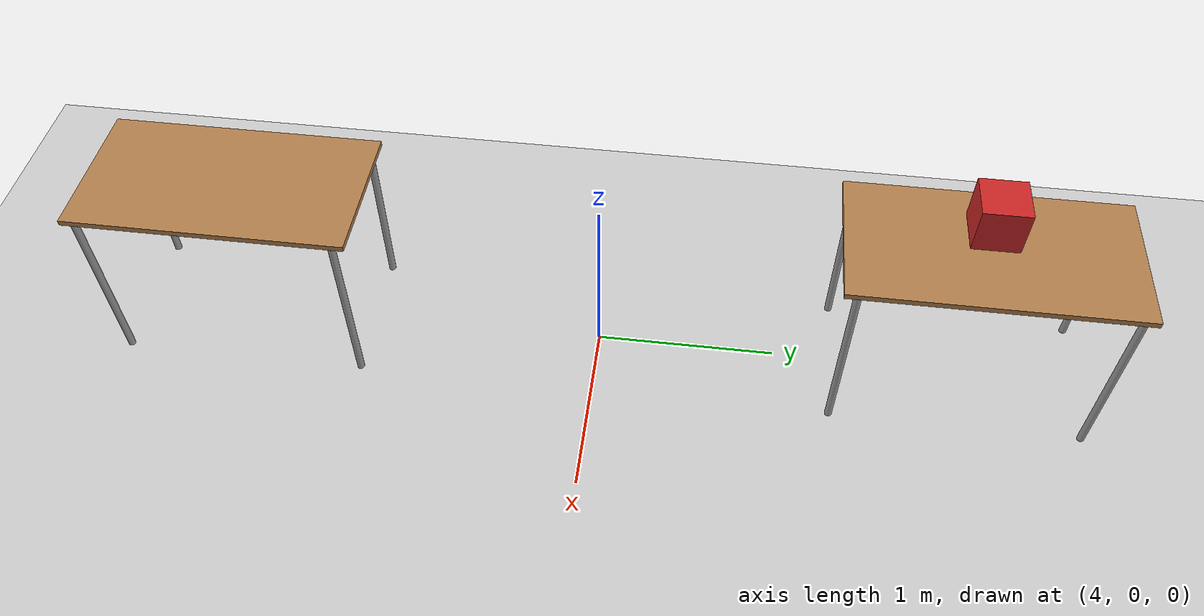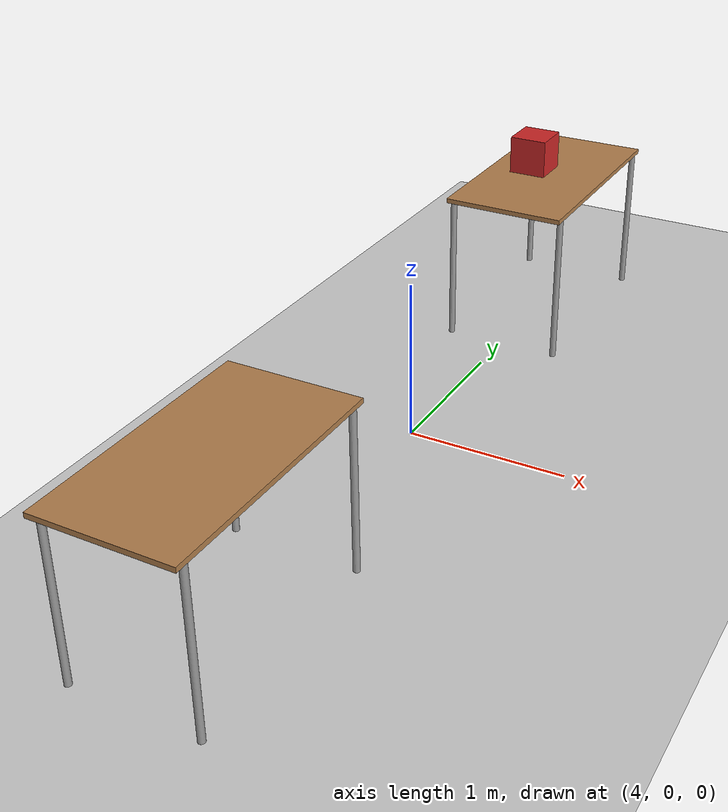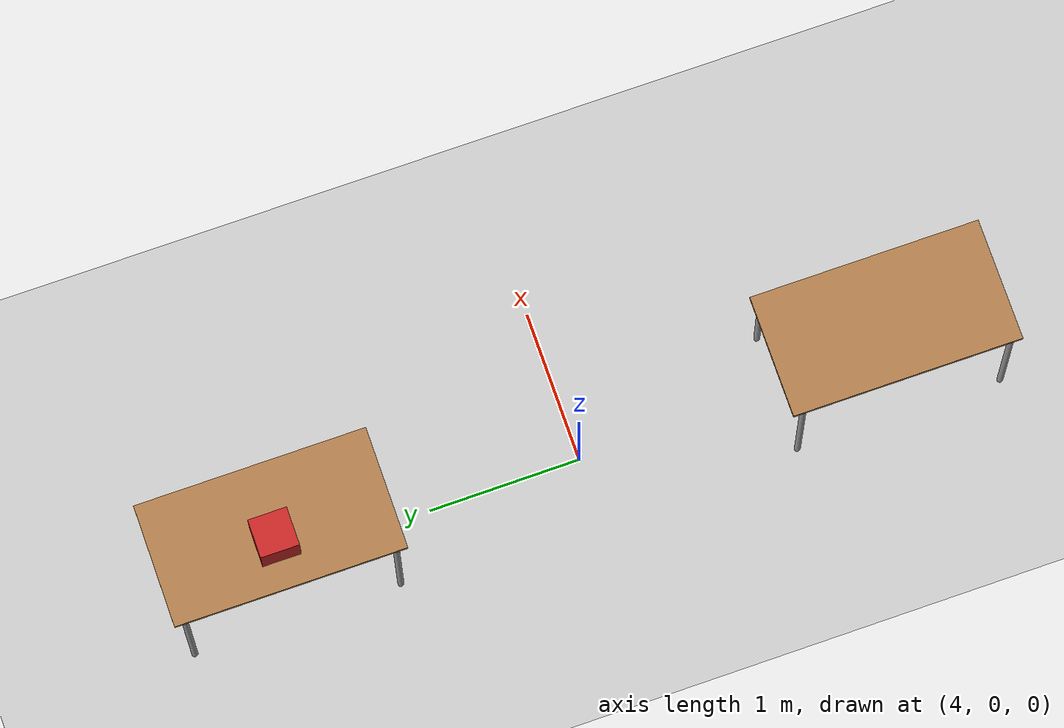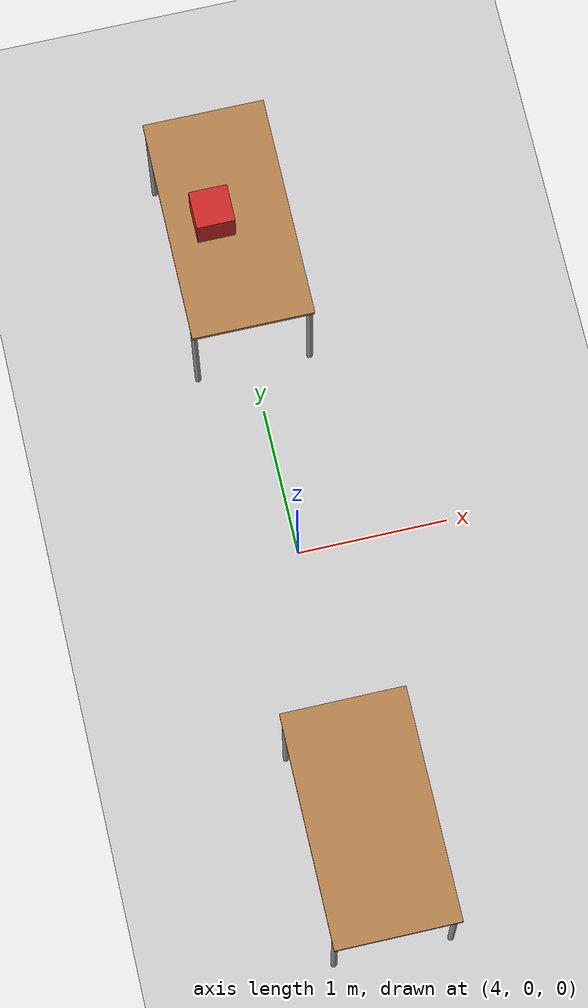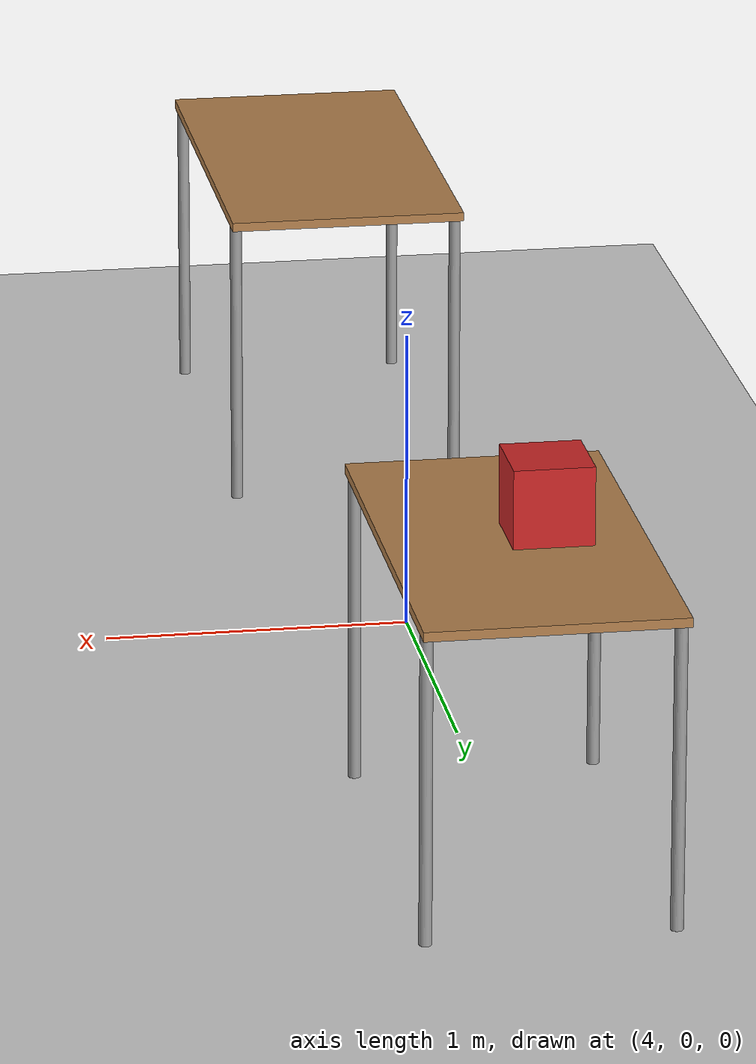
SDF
<?xml version="1.0" ?>
<sdf version="1.4">
  <!-- We use a custom world for the iiwa so that the camera angle is launched correctly. -->
  <!-- One can change this world to his needs or use another one. -->

  <world name="harmony_world">

    <include>
      <uri>model://ground_plane</uri>
    </include>

    <!-- Global light source -->
    <include>
      <uri>model://sun</uri>
    </include>

    <!-- Focus camera -->
    <gui fullscreen='0'>
      <camera name='user_camera'>
        <pose>8.0 -5.0 2.75 0.000000 0.275643 2.356190</pose>
        <view_controller>orbit</view_controller>
        <projection_type>perspective</projection_type>
      </camera>
    </gui>

    <model name='table'>
      <static>1</static>
      <link name='link'>
        <collision name='surface'>
          <pose>0 0 1 0 -0 0</pose>
          <geometry>
            <box>
              <size>1.5 0.8 0.03</size>
            </box>
          </geometry>
          <surface>
            <friction>
              <ode>
                <mu>0.6</mu>
                <mu2>0.6</mu2>
              </ode>
              <torsional>
                <ode/>
              </torsional>
            </friction>
            <contact>
              <ode/>
            </contact>
            <bounce/>
          </surface>
          <max_contacts>10</max_contacts>
        </collision>
        <visual name='visual1'>
          <pose>0 0 1 0 -0 0</pose>
          <geometry>
            <box>
              <size>1.5 0.8 0.03</size>
            </box>
          </geometry>
          <material>
            <script>
              <uri>file://media/materials/scripts/gazebo.material</uri>
              <name>Gazebo/Wood</name>
            </script>
          </material>
        </visual>
        <collision name='front_left_leg'>
          <pose>0.68 0.38 0.5 0 -0 0</pose>
          <geometry>
            <cylinder>
              <radius>0.02</radius>
              <length>1</length>
            </cylinder>
          </geometry>
          <max_contacts>10</max_contacts>
          <surface>
            <contact>
              <ode/>
            </contact>
            <bounce/>
            <friction>
              <torsional>
                <ode/>
              </torsional>
              <ode/>
            </friction>
          </surface>
        </collision>
        <visual name='front_left_leg'>
          <pose>0.68 0.38 0.5 0 -0 0</pose>
          <geometry>
            <cylinder>
              <radius>0.02</radius>
              <length>1</length>
            </cylinder>
          </geometry>
          <material>
            <script>
              <uri>file://media/materials/scripts/gazebo.material</uri>
              <name>Gazebo/Grey</name>
            </script>
          </material>
        </visual>
        <collision name='front_right_leg'>
          <pose>0.68 -0.38 0.5 0 -0 0</pose>
          <geometry>
            <cylinder>
              <radius>0.02</radius>
              <length>1</length>
            </cylinder>
          </geometry>
          <max_contacts>10</max_contacts>
          <surface>
            <contact>
              <ode/>
            </contact>
            <bounce/>
            <friction>
              <torsional>
                <ode/>
              </torsional>
              <ode/>
            </friction>
          </surface>
        </collision>
        <visual name='front_right_leg'>
          <pose>0.68 -0.38 0.5 0 -0 0</pose>
          <geometry>
            <cylinder>
              <radius>0.02</radius>
              <length>1</length>
            </cylinder>
          </geometry>
          <material>
            <script>
              <uri>file://media/materials/scripts/gazebo.material</uri>
              <name>Gazebo/Grey</name>
            </script>
          </material>
        </visual>
        <collision name='back_right_leg'>
          <pose>-0.68 -0.38 0.5 0 -0 0</pose>
          <geometry>
            <cylinder>
              <radius>0.02</radius>
              <length>1</length>
            </cylinder>
          </geometry>
          <max_contacts>10</max_contacts>
          <surface>
            <contact>
              <ode/>
            </contact>
            <bounce/>
            <friction>
              <torsional>
                <ode/>
              </torsional>
              <ode/>
            </friction>
          </surface>
        </collision>
        <visual name='back_right_leg'>
          <pose>-0.68 -0.38 0.5 0 -0 0</pose>
          <geometry>
            <cylinder>
              <radius>0.02</radius>
              <length>1</length>
            </cylinder>
          </geometry>
          <material>
            <script>
              <uri>file://media/materials/scripts/gazebo.material</uri>
              <name>Gazebo/Grey</name>
            </script>
          </material>
        </visual>
        <collision name='back_left_leg'>
          <pose>-0.68 0.38 0.5 0 -0 0</pose>
          <geometry>
            <cylinder>
              <radius>0.02</radius>
              <length>1</length>
            </cylinder>
          </geometry>
          <max_contacts>10</max_contacts>
          <surface>
            <contact>
              <ode/>
            </contact>
            <bounce/>
            <friction>
              <torsional>
                <ode/>
              </torsional>
              <ode/>
            </friction>
          </surface>
        </collision>
        <visual name='back_left_leg'>
          <pose>-0.68 0.38 0.5 0 -0 0</pose>
          <geometry>
            <cylinder>
              <radius>0.02</radius>
              <length>1</length>
            </cylinder>
          </geometry>
          <material>
            <script>
              <uri>file://media/materials/scripts/gazebo.material</uri>
              <name>Gazebo/Grey</name>
            </script>
          </material>
        </visual>
        <self_collide>0</self_collide>
        <enable_wind>0</enable_wind>
        <kinematic>0</kinematic>
      </link>
      <pose>4 2 0 0 -0 1.5707963</pose>
    </model>

    <model name='unit_box'>
      <pose>3.90 2 1.150 0 -0 0</pose>
      <link name='link'>
        <inertial>
          <mass>0.3</mass>
          <inertia>
            <ixx>0.166667</ixx>
            <ixy>0</ixy>
            <ixz>0</ixz>
            <iyy>0.166667</iyy>
            <iyz>0</iyz>
            <izz>0.166667</izz>
          </inertia>
          <pose>0 0 0 0 -0 0</pose>
        </inertial>
        <collision name='collision'>
          <geometry>
            <box>
              <size>0.25 0.25 0.25</size>
            </box>
          </geometry>
          <max_contacts>1000</max_contacts>
          <surface>
            <friction>
              <ode>
                <mu>1</mu>
                <mu2>1</mu2>
              </ode>
              <torsional>
                <coefficient>10</coefficient>
                <surface_radius>10</surface_radius>
                <use_patch_radius>false</use_patch_radius>
              </torsional>
            </friction>
            <contact>
              <ode>
                <kp>1e+6</kp>
                <kd>1e+3</kd>
                <max_vel>0</max_vel>
                <min_depth>0.001</min_depth>
              </ode>
            </contact>
            <bounce/>
          </surface>
        </collision>
        <visual name='visual'>
          <geometry>
            <box>
              <size>0.25 0.25 0.25</size>
            </box>
          </geometry>
          <material>
            <script>
              <name>Gazebo/RedBright</name>
              <uri>file://media/materials/scripts/gazebo.material</uri>
            </script>
          </material>
        </visual>
        <self_collide>0</self_collide>
        <enable_wind>0</enable_wind>
        <kinematic>0</kinematic>
      </link>
    </model>

    <model name='table2'>
      <static>1</static>
      <link name='link'>
        <collision name='surface'>
          <pose>0 0 1 0 -0 0</pose>
          <geometry>
            <box>
              <size>1.5 0.8 0.03</size>
            </box>
          </geometry>
          <surface>
            <friction>
              <ode>
                <mu>0.6</mu>
                <mu2>0.6</mu2>
              </ode>
              <torsional>
                <ode/>
              </torsional>
            </friction>
            <contact>
              <ode/>
            </contact>
            <bounce/>
          </surface>
          <max_contacts>10</max_contacts>
        </collision>
        <visual name='visual1'>
          <pose>0 0 1 0 -0 0</pose>
          <geometry>
            <box>
              <size>1.5 0.8 0.03</size>
            </box>
          </geometry>
          <material>
            <script>
              <uri>file://media/materials/scripts/gazebo.material</uri>
              <name>Gazebo/Wood</name>
            </script>
          </material>
        </visual>
        <collision name='front_left_leg'>
          <pose>0.68 0.38 0.5 0 -0 0</pose>
          <geometry>
            <cylinder>
              <radius>0.02</radius>
              <length>1</length>
            </cylinder>
          </geometry>
          <max_contacts>10</max_contacts>
          <surface>
            <contact>
              <ode/>
            </contact>
            <bounce/>
            <friction>
              <torsional>
                <ode/>
              </torsional>
              <ode/>
            </friction>
          </surface>
        </collision>
        <visual name='front_left_leg'>
          <pose>0.68 0.38 0.5 0 -0 0</pose>
          <geometry>
            <cylinder>
              <radius>0.02</radius>
              <length>1</length>
            </cylinder>
          </geometry>
          <material>
            <script>
              <uri>file://media/materials/scripts/gazebo.material</uri>
              <name>Gazebo/Grey</name>
            </script>
          </material>
        </visual>
        <collision name='front_right_leg'>
          <pose>0.68 -0.38 0.5 0 -0 0</pose>
          <geometry>
            <cylinder>
              <radius>0.02</radius>
              <length>1</length>
            </cylinder>
          </geometry>
          <max_contacts>10</max_contacts>
          <surface>
            <contact>
              <ode/>
            </contact>
            <bounce/>
            <friction>
              <torsional>
                <ode/>
              </torsional>
              <ode/>
            </friction>
          </surface>
        </collision>
        <visual name='front_right_leg'>
          <pose>0.68 -0.38 0.5 0 -0 0</pose>
          <geometry>
            <cylinder>
              <radius>0.02</radius>
              <length>1</length>
            </cylinder>
          </geometry>
          <material>
            <script>
              <uri>file://media/materials/scripts/gazebo.material</uri>
              <name>Gazebo/Grey</name>
            </script>
          </material>
        </visual>
        <collision name='back_right_leg'>
          <pose>-0.68 -0.38 0.5 0 -0 0</pose>
          <geometry>
            <cylinder>
              <radius>0.02</radius>
              <length>1</length>
            </cylinder>
          </geometry>
          <max_contacts>10</max_contacts>
          <surface>
            <contact>
              <ode/>
            </contact>
            <bounce/>
            <friction>
              <torsional>
                <ode/>
              </torsional>
              <ode/>
            </friction>
          </surface>
        </collision>
        <visual name='back_right_leg'>
          <pose>-0.68 -0.38 0.5 0 -0 0</pose>
          <geometry>
            <cylinder>
              <radius>0.02</radius>
              <length>1</length>
            </cylinder>
          </geometry>
          <material>
            <script>
              <uri>file://media/materials/scripts/gazebo.material</uri>
              <name>Gazebo/Grey</name>
            </script>
          </material>
        </visual>
        <collision name='back_left_leg'>
          <pose>-0.68 0.38 0.5 0 -0 0</pose>
          <geometry>
            <cylinder>
              <radius>0.02</radius>
              <length>1</length>
            </cylinder>
          </geometry>
          <max_contacts>10</max_contacts>
          <surface>
            <contact>
              <ode/>
            </contact>
            <bounce/>
            <friction>
              <torsional>
                <ode/>
              </torsional>
              <ode/>
            </friction>
          </surface>
        </collision>
        <visual name='back_left_leg'>
          <pose>-0.68 0.38 0.5 0 -0 0</pose>
          <geometry>
            <cylinder>
              <radius>0.02</radius>
              <length>1</length>
            </cylinder>
          </geometry>
          <material>
            <script>
              <uri>file://media/materials/scripts/gazebo.material</uri>
              <name>Gazebo/Grey</name>
            </script>
          </material>
        </visual>
        <self_collide>0</self_collide>
        <enable_wind>0</enable_wind>
        <kinematic>0</kinematic>
      </link>
      <pose>4 -2 0 0 -0 1.5707963</pose>
    </model>

  </world>

</sdf>
